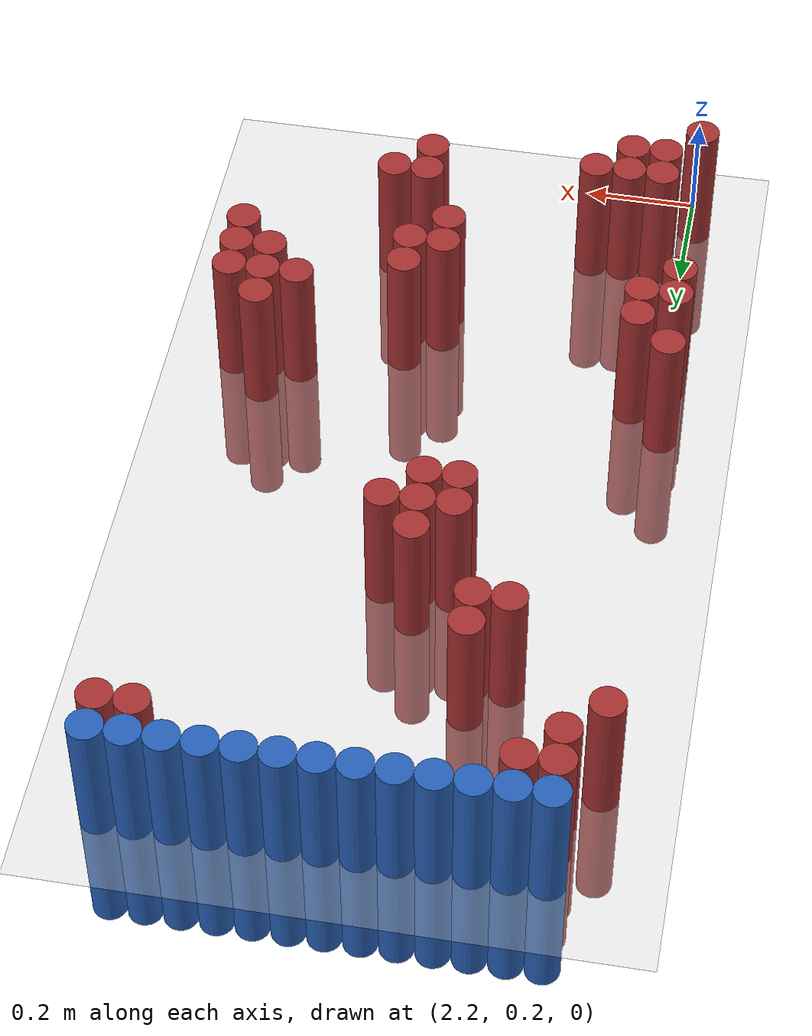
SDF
<sdf version="1.6">
 <world name="default">
  <model name="ground_plane">
   <static>1</static>
   <link name="link">
    <collision name="collision">
     <geometry><plane><normal>0 0 1</normal><size>100 100</size></plane></geometry>
     <surface><friction><ode><mu>100</mu><mu2>50</mu2></ode></friction></surface>
    </collision>
    <visual name="visual">
     <cast_shadows>0</cast_shadows>
     <geometry><plane><normal>0 0 1</normal><size>100 100</size></plane></geometry>
     <material>
      <script><uri>file://media/materials/scripts/gazebo.material</uri><name>Gazebo/Grey</name></script>
     </material>
    </visual>
   </link>
  </model>
  <model name="unit_cylinder_98">
   <static>1</static>
   <pose>2.250000 1.770000 0.000000 0.000000 0.000000 0.000000</pose>
   <link name="link">
    <inertial>
     <mass>1</mass>
     <inertia><ixx>0.145833</ixx><ixy>0</ixy><ixz>0</ixz><iyy>0.145833</iyy><iyz>0</iyz><izz>0.125</izz></inertia>
    </inertial>
    <collision name="collision">
     <geometry><cylinder><radius>0.030000</radius><length>0.5</length></cylinder></geometry>
    </collision>
    <visual name="visual">
     <geometry><cylinder><radius>0.030000</radius><length>0.5</length></cylinder></geometry>
     <material>
      <ambient>0.152000 0.379000 0.720000 1</ambient>
      <diffuse>0.152000 0.379000 0.720000 1</diffuse>
     </material>
     <material>
      <script><name>Gazebo/Grey</name><uri>file://media/materials/scripts/gazebo.material</uri></script>
     </material>
    </visual>
   </link>
  </model>
  <model name="unit_cylinder_99">
   <static>1</static>
   <pose>2.310000 1.770000 0.000000 0.000000 0.000000 0.000000</pose>
   <link name="link">
    <inertial>
     <mass>1</mass>
     <inertia><ixx>0.145833</ixx><ixy>0</ixy><ixz>0</ixz><iyy>0.145833</iyy><iyz>0</iyz><izz>0.125</izz></inertia>
    </inertial>
    <collision name="collision">
     <geometry><cylinder><radius>0.030000</radius><length>0.5</length></cylinder></geometry>
    </collision>
    <visual name="visual">
     <geometry><cylinder><radius>0.030000</radius><length>0.5</length></cylinder></geometry>
     <material>
      <ambient>0.152000 0.379000 0.720000 1</ambient>
      <diffuse>0.152000 0.379000 0.720000 1</diffuse>
     </material>
     <material>
      <script><name>Gazebo/Grey</name><uri>file://media/materials/scripts/gazebo.material</uri></script>
     </material>
    </visual>
   </link>
  </model>
  <model name="unit_cylinder_100">
   <static>1</static>
   <pose>2.370000 1.770000 0.000000 0.000000 0.000000 0.000000</pose>
   <link name="link">
    <inertial>
     <mass>1</mass>
     <inertia><ixx>0.145833</ixx><ixy>0</ixy><ixz>0</ixz><iyy>0.145833</iyy><iyz>0</iyz><izz>0.125</izz></inertia>
    </inertial>
    <collision name="collision">
     <geometry><cylinder><radius>0.030000</radius><length>0.5</length></cylinder></geometry>
    </collision>
    <visual name="visual">
     <geometry><cylinder><radius>0.030000</radius><length>0.5</length></cylinder></geometry>
     <material>
      <ambient>0.152000 0.379000 0.720000 1</ambient>
      <diffuse>0.152000 0.379000 0.720000 1</diffuse>
     </material>
     <material>
      <script><name>Gazebo/Grey</name><uri>file://media/materials/scripts/gazebo.material</uri></script>
     </material>
    </visual>
   </link>
  </model>
  <model name="unit_cylinder_101">
   <static>1</static>
   <pose>2.430000 1.770000 0.000000 0.000000 0.000000 0.000000</pose>
   <link name="link">
    <inertial>
     <mass>1</mass>
     <inertia><ixx>0.145833</ixx><ixy>0</ixy><ixz>0</ixz><iyy>0.145833</iyy><iyz>0</iyz><izz>0.125</izz></inertia>
    </inertial>
    <collision name="collision">
     <geometry><cylinder><radius>0.030000</radius><length>0.5</length></cylinder></geometry>
    </collision>
    <visual name="visual">
     <geometry><cylinder><radius>0.030000</radius><length>0.5</length></cylinder></geometry>
     <material>
      <ambient>0.152000 0.379000 0.720000 1</ambient>
      <diffuse>0.152000 0.379000 0.720000 1</diffuse>
     </material>
     <material>
      <script><name>Gazebo/Grey</name><uri>file://media/materials/scripts/gazebo.material</uri></script>
     </material>
    </visual>
   </link>
  </model>
  <model name="unit_cylinder_102">
   <static>1</static>
   <pose>2.490000 1.770000 0.000000 0.000000 0.000000 0.000000</pose>
   <link name="link">
    <inertial>
     <mass>1</mass>
     <inertia><ixx>0.145833</ixx><ixy>0</ixy><ixz>0</ixz><iyy>0.145833</iyy><iyz>0</iyz><izz>0.125</izz></inertia>
    </inertial>
    <collision name="collision">
     <geometry><cylinder><radius>0.030000</radius><length>0.5</length></cylinder></geometry>
    </collision>
    <visual name="visual">
     <geometry><cylinder><radius>0.030000</radius><length>0.5</length></cylinder></geometry>
     <material>
      <ambient>0.152000 0.379000 0.720000 1</ambient>
      <diffuse>0.152000 0.379000 0.720000 1</diffuse>
     </material>
     <material>
      <script><name>Gazebo/Grey</name><uri>file://media/materials/scripts/gazebo.material</uri></script>
     </material>
    </visual>
   </link>
  </model>
  <model name="unit_cylinder_103">
   <static>1</static>
   <pose>2.550000 1.770000 0.000000 0.000000 0.000000 0.000000</pose>
   <link name="link">
    <inertial>
     <mass>1</mass>
     <inertia><ixx>0.145833</ixx><ixy>0</ixy><ixz>0</ixz><iyy>0.145833</iyy><iyz>0</iyz><izz>0.125</izz></inertia>
    </inertial>
    <collision name="collision">
     <geometry><cylinder><radius>0.030000</radius><length>0.5</length></cylinder></geometry>
    </collision>
    <visual name="visual">
     <geometry><cylinder><radius>0.030000</radius><length>0.5</length></cylinder></geometry>
     <material>
      <ambient>0.152000 0.379000 0.720000 1</ambient>
      <diffuse>0.152000 0.379000 0.720000 1</diffuse>
     </material>
     <material>
      <script><name>Gazebo/Grey</name><uri>file://media/materials/scripts/gazebo.material</uri></script>
     </material>
    </visual>
   </link>
  </model>
  <model name="unit_cylinder_104">
   <static>1</static>
   <pose>2.610000 1.770000 0.000000 0.000000 0.000000 0.000000</pose>
   <link name="link">
    <inertial>
     <mass>1</mass>
     <inertia><ixx>0.145833</ixx><ixy>0</ixy><ixz>0</ixz><iyy>0.145833</iyy><iyz>0</iyz><izz>0.125</izz></inertia>
    </inertial>
    <collision name="collision">
     <geometry><cylinder><radius>0.030000</radius><length>0.5</length></cylinder></geometry>
    </collision>
    <visual name="visual">
     <geometry><cylinder><radius>0.030000</radius><length>0.5</length></cylinder></geometry>
     <material>
      <ambient>0.152000 0.379000 0.720000 1</ambient>
      <diffuse>0.152000 0.379000 0.720000 1</diffuse>
     </material>
     <material>
      <script><name>Gazebo/Grey</name><uri>file://media/materials/scripts/gazebo.material</uri></script>
     </material>
    </visual>
   </link>
  </model>
  <model name="unit_cylinder_105">
   <static>1</static>
   <pose>2.670000 1.770000 0.000000 0.000000 0.000000 0.000000</pose>
   <link name="link">
    <inertial>
     <mass>1</mass>
     <inertia><ixx>0.145833</ixx><ixy>0</ixy><ixz>0</ixz><iyy>0.145833</iyy><iyz>0</iyz><izz>0.125</izz></inertia>
    </inertial>
    <collision name="collision">
     <geometry><cylinder><radius>0.030000</radius><length>0.5</length></cylinder></geometry>
    </collision>
    <visual name="visual">
     <geometry><cylinder><radius>0.030000</radius><length>0.5</length></cylinder></geometry>
     <material>
      <ambient>0.152000 0.379000 0.720000 1</ambient>
      <diffuse>0.152000 0.379000 0.720000 1</diffuse>
     </material>
     <material>
      <script><name>Gazebo/Grey</name><uri>file://media/materials/scripts/gazebo.material</uri></script>
     </material>
    </visual>
   </link>
  </model>
  <model name="unit_cylinder_106">
   <static>1</static>
   <pose>2.730000 1.770000 0.000000 0.000000 0.000000 0.000000</pose>
   <link name="link">
    <inertial>
     <mass>1</mass>
     <inertia><ixx>0.145833</ixx><ixy>0</ixy><ixz>0</ixz><iyy>0.145833</iyy><iyz>0</iyz><izz>0.125</izz></inertia>
    </inertial>
    <collision name="collision">
     <geometry><cylinder><radius>0.030000</radius><length>0.5</length></cylinder></geometry>
    </collision>
    <visual name="visual">
     <geometry><cylinder><radius>0.030000</radius><length>0.5</length></cylinder></geometry>
     <material>
      <ambient>0.152000 0.379000 0.720000 1</ambient>
      <diffuse>0.152000 0.379000 0.720000 1</diffuse>
     </material>
     <material>
      <script><name>Gazebo/Grey</name><uri>file://media/materials/scripts/gazebo.material</uri></script>
     </material>
    </visual>
   </link>
  </model>
  <model name="unit_cylinder_107">
   <static>1</static>
   <pose>2.790000 1.770000 0.000000 0.000000 0.000000 0.000000</pose>
   <link name="link">
    <inertial>
     <mass>1</mass>
     <inertia><ixx>0.145833</ixx><ixy>0</ixy><ixz>0</ixz><iyy>0.145833</iyy><iyz>0</iyz><izz>0.125</izz></inertia>
    </inertial>
    <collision name="collision">
     <geometry><cylinder><radius>0.030000</radius><length>0.5</length></cylinder></geometry>
    </collision>
    <visual name="visual">
     <geometry><cylinder><radius>0.030000</radius><length>0.5</length></cylinder></geometry>
     <material>
      <ambient>0.152000 0.379000 0.720000 1</ambient>
      <diffuse>0.152000 0.379000 0.720000 1</diffuse>
     </material>
     <material>
      <script><name>Gazebo/Grey</name><uri>file://media/materials/scripts/gazebo.material</uri></script>
     </material>
    </visual>
   </link>
  </model>
  <model name="unit_cylinder_108">
   <static>1</static>
   <pose>2.850000 1.770000 0.000000 0.000000 0.000000 0.000000</pose>
   <link name="link">
    <inertial>
     <mass>1</mass>
     <inertia><ixx>0.145833</ixx><ixy>0</ixy><ixz>0</ixz><iyy>0.145833</iyy><iyz>0</iyz><izz>0.125</izz></inertia>
    </inertial>
    <collision name="collision">
     <geometry><cylinder><radius>0.030000</radius><length>0.5</length></cylinder></geometry>
    </collision>
    <visual name="visual">
     <geometry><cylinder><radius>0.030000</radius><length>0.5</length></cylinder></geometry>
     <material>
      <ambient>0.152000 0.379000 0.720000 1</ambient>
      <diffuse>0.152000 0.379000 0.720000 1</diffuse>
     </material>
     <material>
      <script><name>Gazebo/Grey</name><uri>file://media/materials/scripts/gazebo.material</uri></script>
     </material>
    </visual>
   </link>
  </model>
  <model name="unit_cylinder_109">
   <static>1</static>
   <pose>2.910000 1.770000 0.000000 0.000000 0.000000 0.000000</pose>
   <link name="link">
    <inertial>
     <mass>1</mass>
     <inertia><ixx>0.145833</ixx><ixy>0</ixy><ixz>0</ixz><iyy>0.145833</iyy><iyz>0</iyz><izz>0.125</izz></inertia>
    </inertial>
    <collision name="collision">
     <geometry><cylinder><radius>0.030000</radius><length>0.5</length></cylinder></geometry>
    </collision>
    <visual name="visual">
     <geometry><cylinder><radius>0.030000</radius><length>0.5</length></cylinder></geometry>
     <material>
      <ambient>0.152000 0.379000 0.720000 1</ambient>
      <diffuse>0.152000 0.379000 0.720000 1</diffuse>
     </material>
     <material>
      <script><name>Gazebo/Grey</name><uri>file://media/materials/scripts/gazebo.material</uri></script>
     </material>
    </visual>
   </link>
  </model>
  <model name="unit_cylinder_110">
   <static>1</static>
   <pose>2.970000 1.770000 0.000000 0.000000 0.000000 0.000000</pose>
   <link name="link">
    <inertial>
     <mass>1</mass>
     <inertia><ixx>0.145833</ixx><ixy>0</ixy><ixz>0</ixz><iyy>0.145833</iyy><iyz>0</iyz><izz>0.125</izz></inertia>
    </inertial>
    <collision name="collision">
     <geometry><cylinder><radius>0.030000</radius><length>0.5</length></cylinder></geometry>
    </collision>
    <visual name="visual">
     <geometry><cylinder><radius>0.030000</radius><length>0.5</length></cylinder></geometry>
     <material>
      <ambient>0.152000 0.379000 0.720000 1</ambient>
      <diffuse>0.152000 0.379000 0.720000 1</diffuse>
     </material>
     <material>
      <script><name>Gazebo/Grey</name><uri>file://media/materials/scripts/gazebo.material</uri></script>
     </material>
    </visual>
   </link>
  </model>
  <model name="unit_cylinder_127">
   <static>1</static>
   <pose>2.250000 1.710000 0.000000 0.000000 0.000000 0.000000</pose>
   <link name="link">
    <inertial>
     <mass>1</mass>
     <inertia><ixx>0.145833</ixx><ixy>0</ixy><ixz>0</ixz><iyy>0.145833</iyy><iyz>0</iyz><izz>0.125</izz></inertia>
    </inertial>
    <collision name="collision">
     <geometry><cylinder><radius>0.030000</radius><length>0.5</length></cylinder></geometry>
    </collision>
    <visual name="visual">
     <geometry><cylinder><radius>0.030000</radius><length>0.5</length></cylinder></geometry>
     <material>
      <ambient>0.648000 0.192000 0.192000 1</ambient>
      <diffuse>0.648000 0.192000 0.192000 1</diffuse>
     </material>
     <material>
      <script><name>Gazebo/Grey</name><uri>file://media/materials/scripts/gazebo.material</uri></script>
     </material>
    </visual>
   </link>
  </model>
  <model name="unit_cylinder_128">
   <static>1</static>
   <pose>2.310000 1.710000 0.000000 0.000000 0.000000 0.000000</pose>
   <link name="link">
    <inertial>
     <mass>1</mass>
     <inertia><ixx>0.145833</ixx><ixy>0</ixy><ixz>0</ixz><iyy>0.145833</iyy><iyz>0</iyz><izz>0.125</izz></inertia>
    </inertial>
    <collision name="collision">
     <geometry><cylinder><radius>0.030000</radius><length>0.5</length></cylinder></geometry>
    </collision>
    <visual name="visual">
     <geometry><cylinder><radius>0.030000</radius><length>0.5</length></cylinder></geometry>
     <material>
      <ambient>0.648000 0.192000 0.192000 1</ambient>
      <diffuse>0.648000 0.192000 0.192000 1</diffuse>
     </material>
     <material>
      <script><name>Gazebo/Grey</name><uri>file://media/materials/scripts/gazebo.material</uri></script>
     </material>
    </visual>
   </link>
  </model>
  <model name="unit_cylinder_129">
   <static>1</static>
   <pose>2.910000 1.710000 0.000000 0.000000 0.000000 0.000000</pose>
   <link name="link">
    <inertial>
     <mass>1</mass>
     <inertia><ixx>0.145833</ixx><ixy>0</ixy><ixz>0</ixz><iyy>0.145833</iyy><iyz>0</iyz><izz>0.125</izz></inertia>
    </inertial>
    <collision name="collision">
     <geometry><cylinder><radius>0.030000</radius><length>0.5</length></cylinder></geometry>
    </collision>
    <visual name="visual">
     <geometry><cylinder><radius>0.030000</radius><length>0.5</length></cylinder></geometry>
     <material>
      <ambient>0.648000 0.192000 0.192000 1</ambient>
      <diffuse>0.648000 0.192000 0.192000 1</diffuse>
     </material>
     <material>
      <script><name>Gazebo/Grey</name><uri>file://media/materials/scripts/gazebo.material</uri></script>
     </material>
    </visual>
   </link>
  </model>
  <model name="unit_cylinder_130">
   <static>1</static>
   <pose>2.970000 1.710000 0.000000 0.000000 0.000000 0.000000</pose>
   <link name="link">
    <inertial>
     <mass>1</mass>
     <inertia><ixx>0.145833</ixx><ixy>0</ixy><ixz>0</ixz><iyy>0.145833</iyy><iyz>0</iyz><izz>0.125</izz></inertia>
    </inertial>
    <collision name="collision">
     <geometry><cylinder><radius>0.030000</radius><length>0.5</length></cylinder></geometry>
    </collision>
    <visual name="visual">
     <geometry><cylinder><radius>0.030000</radius><length>0.5</length></cylinder></geometry>
     <material>
      <ambient>0.648000 0.192000 0.192000 1</ambient>
      <diffuse>0.648000 0.192000 0.192000 1</diffuse>
     </material>
     <material>
      <script><name>Gazebo/Grey</name><uri>file://media/materials/scripts/gazebo.material</uri></script>
     </material>
    </visual>
   </link>
  </model>
  <model name="unit_cylinder_142">
   <static>1</static>
   <pose>2.250000 1.650000 0.000000 0.000000 0.000000 0.000000</pose>
   <link name="link">
    <inertial>
     <mass>1</mass>
     <inertia><ixx>0.145833</ixx><ixy>0</ixy><ixz>0</ixz><iyy>0.145833</iyy><iyz>0</iyz><izz>0.125</izz></inertia>
    </inertial>
    <collision name="collision">
     <geometry><cylinder><radius>0.030000</radius><length>0.5</length></cylinder></geometry>
    </collision>
    <visual name="visual">
     <geometry><cylinder><radius>0.030000</radius><length>0.5</length></cylinder></geometry>
     <material>
      <ambient>0.648000 0.192000 0.192000 1</ambient>
      <diffuse>0.648000 0.192000 0.192000 1</diffuse>
     </material>
     <material>
      <script><name>Gazebo/Grey</name><uri>file://media/materials/scripts/gazebo.material</uri></script>
     </material>
    </visual>
   </link>
  </model>
  <model name="unit_cylinder_143">
   <static>1</static>
   <pose>2.190000 1.590000 0.000000 0.000000 0.000000 0.000000</pose>
   <link name="link">
    <inertial>
     <mass>1</mass>
     <inertia><ixx>0.145833</ixx><ixy>0</ixy><ixz>0</ixz><iyy>0.145833</iyy><iyz>0</iyz><izz>0.125</izz></inertia>
    </inertial>
    <collision name="collision">
     <geometry><cylinder><radius>0.030000</radius><length>0.5</length></cylinder></geometry>
    </collision>
    <visual name="visual">
     <geometry><cylinder><radius>0.030000</radius><length>0.5</length></cylinder></geometry>
     <material>
      <ambient>0.648000 0.192000 0.192000 1</ambient>
      <diffuse>0.648000 0.192000 0.192000 1</diffuse>
     </material>
     <material>
      <script><name>Gazebo/Grey</name><uri>file://media/materials/scripts/gazebo.material</uri></script>
     </material>
    </visual>
   </link>
  </model>
  <model name="unit_cylinder_144">
   <static>1</static>
   <pose>2.430000 1.470000 0.000000 0.000000 0.000000 0.000000</pose>
   <link name="link">
    <inertial>
     <mass>1</mass>
     <inertia><ixx>0.145833</ixx><ixy>0</ixy><ixz>0</ixz><iyy>0.145833</iyy><iyz>0</iyz><izz>0.125</izz></inertia>
    </inertial>
    <collision name="collision">
     <geometry><cylinder><radius>0.030000</radius><length>0.5</length></cylinder></geometry>
    </collision>
    <visual name="visual">
     <geometry><cylinder><radius>0.030000</radius><length>0.5</length></cylinder></geometry>
     <material>
      <ambient>0.648000 0.192000 0.192000 1</ambient>
      <diffuse>0.648000 0.192000 0.192000 1</diffuse>
     </material>
     <material>
      <script><name>Gazebo/Grey</name><uri>file://media/materials/scripts/gazebo.material</uri></script>
     </material>
    </visual>
   </link>
  </model>
  <model name="unit_cylinder_146">
   <static>1</static>
   <pose>2.370000 1.410000 0.000000 0.000000 0.000000 0.000000</pose>
   <link name="link">
    <inertial>
     <mass>1</mass>
     <inertia><ixx>0.145833</ixx><ixy>0</ixy><ixz>0</ixz><iyy>0.145833</iyy><iyz>0</iyz><izz>0.125</izz></inertia>
    </inertial>
    <collision name="collision">
     <geometry><cylinder><radius>0.030000</radius><length>0.5</length></cylinder></geometry>
    </collision>
    <visual name="visual">
     <geometry><cylinder><radius>0.030000</radius><length>0.5</length></cylinder></geometry>
     <material>
      <ambient>0.648000 0.192000 0.192000 1</ambient>
      <diffuse>0.648000 0.192000 0.192000 1</diffuse>
     </material>
     <material>
      <script><name>Gazebo/Grey</name><uri>file://media/materials/scripts/gazebo.material</uri></script>
     </material>
    </visual>
   </link>
  </model>
  <model name="unit_cylinder_147">
   <static>1</static>
   <pose>2.430000 1.410000 0.000000 0.000000 0.000000 0.000000</pose>
   <link name="link">
    <inertial>
     <mass>1</mass>
     <inertia><ixx>0.145833</ixx><ixy>0</ixy><ixz>0</ixz><iyy>0.145833</iyy><iyz>0</iyz><izz>0.125</izz></inertia>
    </inertial>
    <collision name="collision">
     <geometry><cylinder><radius>0.030000</radius><length>0.5</length></cylinder></geometry>
    </collision>
    <visual name="visual">
     <geometry><cylinder><radius>0.030000</radius><length>0.5</length></cylinder></geometry>
     <material>
      <ambient>0.648000 0.192000 0.192000 1</ambient>
      <diffuse>0.648000 0.192000 0.192000 1</diffuse>
     </material>
     <material>
      <script><name>Gazebo/Grey</name><uri>file://media/materials/scripts/gazebo.material</uri></script>
     </material>
    </visual>
   </link>
  </model>
  <model name="unit_cylinder_150">
   <static>1</static>
   <pose>2.550000 1.290000 0.000000 0.000000 0.000000 0.000000</pose>
   <link name="link">
    <inertial>
     <mass>1</mass>
     <inertia><ixx>0.145833</ixx><ixy>0</ixy><ixz>0</ixz><iyy>0.145833</iyy><iyz>0</iyz><izz>0.125</izz></inertia>
    </inertial>
    <collision name="collision">
     <geometry><cylinder><radius>0.030000</radius><length>0.5</length></cylinder></geometry>
    </collision>
    <visual name="visual">
     <geometry><cylinder><radius>0.030000</radius><length>0.5</length></cylinder></geometry>
     <material>
      <ambient>0.648000 0.192000 0.192000 1</ambient>
      <diffuse>0.648000 0.192000 0.192000 1</diffuse>
     </material>
     <material>
      <script><name>Gazebo/Grey</name><uri>file://media/materials/scripts/gazebo.material</uri></script>
     </material>
    </visual>
   </link>
  </model>
  <model name="unit_cylinder_152">
   <static>1</static>
   <pose>2.490000 1.230000 0.000000 0.000000 0.000000 0.000000</pose>
   <link name="link">
    <inertial>
     <mass>1</mass>
     <inertia><ixx>0.145833</ixx><ixy>0</ixy><ixz>0</ixz><iyy>0.145833</iyy><iyz>0</iyz><izz>0.125</izz></inertia>
    </inertial>
    <collision name="collision">
     <geometry><cylinder><radius>0.030000</radius><length>0.5</length></cylinder></geometry>
    </collision>
    <visual name="visual">
     <geometry><cylinder><radius>0.030000</radius><length>0.5</length></cylinder></geometry>
     <material>
      <ambient>0.648000 0.192000 0.192000 1</ambient>
      <diffuse>0.648000 0.192000 0.192000 1</diffuse>
     </material>
     <material>
      <script><name>Gazebo/Grey</name><uri>file://media/materials/scripts/gazebo.material</uri></script>
     </material>
    </visual>
   </link>
  </model>
  <model name="unit_cylinder_153">
   <static>1</static>
   <pose>2.550000 1.230000 0.000000 0.000000 0.000000 0.000000</pose>
   <link name="link">
    <inertial>
     <mass>1</mass>
     <inertia><ixx>0.145833</ixx><ixy>0</ixy><ixz>0</ixz><iyy>0.145833</iyy><iyz>0</iyz><izz>0.125</izz></inertia>
    </inertial>
    <collision name="collision">
     <geometry><cylinder><radius>0.030000</radius><length>0.5</length></cylinder></geometry>
    </collision>
    <visual name="visual">
     <geometry><cylinder><radius>0.030000</radius><length>0.5</length></cylinder></geometry>
     <material>
      <ambient>0.648000 0.192000 0.192000 1</ambient>
      <diffuse>0.648000 0.192000 0.192000 1</diffuse>
     </material>
     <material>
      <script><name>Gazebo/Grey</name><uri>file://media/materials/scripts/gazebo.material</uri></script>
     </material>
    </visual>
   </link>
  </model>
  <model name="unit_cylinder_154">
   <static>1</static>
   <pose>2.610000 1.230000 0.000000 0.000000 0.000000 0.000000</pose>
   <link name="link">
    <inertial>
     <mass>1</mass>
     <inertia><ixx>0.145833</ixx><ixy>0</ixy><ixz>0</ixz><iyy>0.145833</iyy><iyz>0</iyz><izz>0.125</izz></inertia>
    </inertial>
    <collision name="collision">
     <geometry><cylinder><radius>0.030000</radius><length>0.5</length></cylinder></geometry>
    </collision>
    <visual name="visual">
     <geometry><cylinder><radius>0.030000</radius><length>0.5</length></cylinder></geometry>
     <material>
      <ambient>0.648000 0.192000 0.192000 1</ambient>
      <diffuse>0.648000 0.192000 0.192000 1</diffuse>
     </material>
     <material>
      <script><name>Gazebo/Grey</name><uri>file://media/materials/scripts/gazebo.material</uri></script>
     </material>
    </visual>
   </link>
  </model>
  <model name="unit_cylinder_158">
   <static>1</static>
   <pose>2.490000 1.170000 0.000000 0.000000 0.000000 0.000000</pose>
   <link name="link">
    <inertial>
     <mass>1</mass>
     <inertia><ixx>0.145833</ixx><ixy>0</ixy><ixz>0</ixz><iyy>0.145833</iyy><iyz>0</iyz><izz>0.125</izz></inertia>
    </inertial>
    <collision name="collision">
     <geometry><cylinder><radius>0.030000</radius><length>0.5</length></cylinder></geometry>
    </collision>
    <visual name="visual">
     <geometry><cylinder><radius>0.030000</radius><length>0.5</length></cylinder></geometry>
     <material>
      <ambient>0.648000 0.192000 0.192000 1</ambient>
      <diffuse>0.648000 0.192000 0.192000 1</diffuse>
     </material>
     <material>
      <script><name>Gazebo/Grey</name><uri>file://media/materials/scripts/gazebo.material</uri></script>
     </material>
    </visual>
   </link>
  </model>
  <model name="unit_cylinder_159">
   <static>1</static>
   <pose>2.550000 1.170000 0.000000 0.000000 0.000000 0.000000</pose>
   <link name="link">
    <inertial>
     <mass>1</mass>
     <inertia><ixx>0.145833</ixx><ixy>0</ixy><ixz>0</ixz><iyy>0.145833</iyy><iyz>0</iyz><izz>0.125</izz></inertia>
    </inertial>
    <collision name="collision">
     <geometry><cylinder><radius>0.030000</radius><length>0.5</length></cylinder></geometry>
    </collision>
    <visual name="visual">
     <geometry><cylinder><radius>0.030000</radius><length>0.5</length></cylinder></geometry>
     <material>
      <ambient>0.648000 0.192000 0.192000 1</ambient>
      <diffuse>0.648000 0.192000 0.192000 1</diffuse>
     </material>
     <material>
      <script><name>Gazebo/Grey</name><uri>file://media/materials/scripts/gazebo.material</uri></script>
     </material>
    </visual>
   </link>
  </model>
  <model name="unit_cylinder_166">
   <static>1</static>
   <pose>2.190000 0.810000 0.000000 0.000000 0.000000 0.000000</pose>
   <link name="link">
    <inertial>
     <mass>1</mass>
     <inertia><ixx>0.145833</ixx><ixy>0</ixy><ixz>0</ixz><iyy>0.145833</iyy><iyz>0</iyz><izz>0.125</izz></inertia>
    </inertial>
    <collision name="collision">
     <geometry><cylinder><radius>0.030000</radius><length>0.5</length></cylinder></geometry>
    </collision>
    <visual name="visual">
     <geometry><cylinder><radius>0.030000</radius><length>0.5</length></cylinder></geometry>
     <material>
      <ambient>0.648000 0.192000 0.192000 1</ambient>
      <diffuse>0.648000 0.192000 0.192000 1</diffuse>
     </material>
     <material>
      <script><name>Gazebo/Grey</name><uri>file://media/materials/scripts/gazebo.material</uri></script>
     </material>
    </visual>
   </link>
  </model>
  <model name="unit_cylinder_167">
   <static>1</static>
   <pose>2.910000 0.810000 0.000000 0.000000 0.000000 0.000000</pose>
   <link name="link">
    <inertial>
     <mass>1</mass>
     <inertia><ixx>0.145833</ixx><ixy>0</ixy><ixz>0</ixz><iyy>0.145833</iyy><iyz>0</iyz><izz>0.125</izz></inertia>
    </inertial>
    <collision name="collision">
     <geometry><cylinder><radius>0.030000</radius><length>0.5</length></cylinder></geometry>
    </collision>
    <visual name="visual">
     <geometry><cylinder><radius>0.030000</radius><length>0.5</length></cylinder></geometry>
     <material>
      <ambient>0.648000 0.192000 0.192000 1</ambient>
      <diffuse>0.648000 0.192000 0.192000 1</diffuse>
     </material>
     <material>
      <script><name>Gazebo/Grey</name><uri>file://media/materials/scripts/gazebo.material</uri></script>
     </material>
    </visual>
   </link>
  </model>
  <model name="unit_cylinder_168">
   <static>1</static>
   <pose>2.250000 0.750000 0.000000 0.000000 0.000000 0.000000</pose>
   <link name="link">
    <inertial>
     <mass>1</mass>
     <inertia><ixx>0.145833</ixx><ixy>0</ixy><ixz>0</ixz><iyy>0.145833</iyy><iyz>0</iyz><izz>0.125</izz></inertia>
    </inertial>
    <collision name="collision">
     <geometry><cylinder><radius>0.030000</radius><length>0.5</length></cylinder></geometry>
    </collision>
    <visual name="visual">
     <geometry><cylinder><radius>0.030000</radius><length>0.5</length></cylinder></geometry>
     <material>
      <ambient>0.648000 0.192000 0.192000 1</ambient>
      <diffuse>0.648000 0.192000 0.192000 1</diffuse>
     </material>
     <material>
      <script><name>Gazebo/Grey</name><uri>file://media/materials/scripts/gazebo.material</uri></script>
     </material>
    </visual>
   </link>
  </model>
  <model name="unit_cylinder_169">
   <static>1</static>
   <pose>2.850000 0.750000 0.000000 0.000000 0.000000 0.000000</pose>
   <link name="link">
    <inertial>
     <mass>1</mass>
     <inertia><ixx>0.145833</ixx><ixy>0</ixy><ixz>0</ixz><iyy>0.145833</iyy><iyz>0</iyz><izz>0.125</izz></inertia>
    </inertial>
    <collision name="collision">
     <geometry><cylinder><radius>0.030000</radius><length>0.5</length></cylinder></geometry>
    </collision>
    <visual name="visual">
     <geometry><cylinder><radius>0.030000</radius><length>0.5</length></cylinder></geometry>
     <material>
      <ambient>0.648000 0.192000 0.192000 1</ambient>
      <diffuse>0.648000 0.192000 0.192000 1</diffuse>
     </material>
     <material>
      <script><name>Gazebo/Grey</name><uri>file://media/materials/scripts/gazebo.material</uri></script>
     </material>
    </visual>
   </link>
  </model>
  <model name="unit_cylinder_170">
   <static>1</static>
   <pose>2.910000 0.750000 0.000000 0.000000 0.000000 0.000000</pose>
   <link name="link">
    <inertial>
     <mass>1</mass>
     <inertia><ixx>0.145833</ixx><ixy>0</ixy><ixz>0</ixz><iyy>0.145833</iyy><iyz>0</iyz><izz>0.125</izz></inertia>
    </inertial>
    <collision name="collision">
     <geometry><cylinder><radius>0.030000</radius><length>0.5</length></cylinder></geometry>
    </collision>
    <visual name="visual">
     <geometry><cylinder><radius>0.030000</radius><length>0.5</length></cylinder></geometry>
     <material>
      <ambient>0.648000 0.192000 0.192000 1</ambient>
      <diffuse>0.648000 0.192000 0.192000 1</diffuse>
     </material>
     <material>
      <script><name>Gazebo/Grey</name><uri>file://media/materials/scripts/gazebo.material</uri></script>
     </material>
    </visual>
   </link>
  </model>
  <model name="unit_cylinder_171">
   <static>1</static>
   <pose>2.970000 0.750000 0.000000 0.000000 0.000000 0.000000</pose>
   <link name="link">
    <inertial>
     <mass>1</mass>
     <inertia><ixx>0.145833</ixx><ixy>0</ixy><ixz>0</ixz><iyy>0.145833</iyy><iyz>0</iyz><izz>0.125</izz></inertia>
    </inertial>
    <collision name="collision">
     <geometry><cylinder><radius>0.030000</radius><length>0.5</length></cylinder></geometry>
    </collision>
    <visual name="visual">
     <geometry><cylinder><radius>0.030000</radius><length>0.5</length></cylinder></geometry>
     <material>
      <ambient>0.648000 0.192000 0.192000 1</ambient>
      <diffuse>0.648000 0.192000 0.192000 1</diffuse>
     </material>
     <material>
      <script><name>Gazebo/Grey</name><uri>file://media/materials/scripts/gazebo.material</uri></script>
     </material>
    </visual>
   </link>
  </model>
  <model name="unit_cylinder_172">
   <static>1</static>
   <pose>2.190000 0.690000 0.000000 0.000000 0.000000 0.000000</pose>
   <link name="link">
    <inertial>
     <mass>1</mass>
     <inertia><ixx>0.145833</ixx><ixy>0</ixy><ixz>0</ixz><iyy>0.145833</iyy><iyz>0</iyz><izz>0.125</izz></inertia>
    </inertial>
    <collision name="collision">
     <geometry><cylinder><radius>0.030000</radius><length>0.5</length></cylinder></geometry>
    </collision>
    <visual name="visual">
     <geometry><cylinder><radius>0.030000</radius><length>0.5</length></cylinder></geometry>
     <material>
      <ambient>0.648000 0.192000 0.192000 1</ambient>
      <diffuse>0.648000 0.192000 0.192000 1</diffuse>
     </material>
     <material>
      <script><name>Gazebo/Grey</name><uri>file://media/materials/scripts/gazebo.material</uri></script>
     </material>
    </visual>
   </link>
  </model>
  <model name="unit_cylinder_173">
   <static>1</static>
   <pose>2.250000 0.690000 0.000000 0.000000 0.000000 0.000000</pose>
   <link name="link">
    <inertial>
     <mass>1</mass>
     <inertia><ixx>0.145833</ixx><ixy>0</ixy><ixz>0</ixz><iyy>0.145833</iyy><iyz>0</iyz><izz>0.125</izz></inertia>
    </inertial>
    <collision name="collision">
     <geometry><cylinder><radius>0.030000</radius><length>0.5</length></cylinder></geometry>
    </collision>
    <visual name="visual">
     <geometry><cylinder><radius>0.030000</radius><length>0.5</length></cylinder></geometry>
     <material>
      <ambient>0.648000 0.192000 0.192000 1</ambient>
      <diffuse>0.648000 0.192000 0.192000 1</diffuse>
     </material>
     <material>
      <script><name>Gazebo/Grey</name><uri>file://media/materials/scripts/gazebo.material</uri></script>
     </material>
    </visual>
   </link>
  </model>
  <model name="unit_cylinder_174">
   <static>1</static>
   <pose>2.670000 0.690000 0.000000 0.000000 0.000000 0.000000</pose>
   <link name="link">
    <inertial>
     <mass>1</mass>
     <inertia><ixx>0.145833</ixx><ixy>0</ixy><ixz>0</ixz><iyy>0.145833</iyy><iyz>0</iyz><izz>0.125</izz></inertia>
    </inertial>
    <collision name="collision">
     <geometry><cylinder><radius>0.030000</radius><length>0.5</length></cylinder></geometry>
    </collision>
    <visual name="visual">
     <geometry><cylinder><radius>0.030000</radius><length>0.5</length></cylinder></geometry>
     <material>
      <ambient>0.648000 0.192000 0.192000 1</ambient>
      <diffuse>0.648000 0.192000 0.192000 1</diffuse>
     </material>
     <material>
      <script><name>Gazebo/Grey</name><uri>file://media/materials/scripts/gazebo.material</uri></script>
     </material>
    </visual>
   </link>
  </model>
  <model name="unit_cylinder_175">
   <static>1</static>
   <pose>2.910000 0.690000 0.000000 0.000000 0.000000 0.000000</pose>
   <link name="link">
    <inertial>
     <mass>1</mass>
     <inertia><ixx>0.145833</ixx><ixy>0</ixy><ixz>0</ixz><iyy>0.145833</iyy><iyz>0</iyz><izz>0.125</izz></inertia>
    </inertial>
    <collision name="collision">
     <geometry><cylinder><radius>0.030000</radius><length>0.5</length></cylinder></geometry>
    </collision>
    <visual name="visual">
     <geometry><cylinder><radius>0.030000</radius><length>0.5</length></cylinder></geometry>
     <material>
      <ambient>0.648000 0.192000 0.192000 1</ambient>
      <diffuse>0.648000 0.192000 0.192000 1</diffuse>
     </material>
     <material>
      <script><name>Gazebo/Grey</name><uri>file://media/materials/scripts/gazebo.material</uri></script>
     </material>
    </visual>
   </link>
  </model>
  <model name="unit_cylinder_176">
   <static>1</static>
   <pose>2.970000 0.690000 0.000000 0.000000 0.000000 0.000000</pose>
   <link name="link">
    <inertial>
     <mass>1</mass>
     <inertia><ixx>0.145833</ixx><ixy>0</ixy><ixz>0</ixz><iyy>0.145833</iyy><iyz>0</iyz><izz>0.125</izz></inertia>
    </inertial>
    <collision name="collision">
     <geometry><cylinder><radius>0.030000</radius><length>0.5</length></cylinder></geometry>
    </collision>
    <visual name="visual">
     <geometry><cylinder><radius>0.030000</radius><length>0.5</length></cylinder></geometry>
     <material>
      <ambient>0.648000 0.192000 0.192000 1</ambient>
      <diffuse>0.648000 0.192000 0.192000 1</diffuse>
     </material>
     <material>
      <script><name>Gazebo/Grey</name><uri>file://media/materials/scripts/gazebo.material</uri></script>
     </material>
    </visual>
   </link>
  </model>
  <model name="unit_cylinder_179">
   <static>1</static>
   <pose>2.190000 0.630000 0.000000 0.000000 0.000000 0.000000</pose>
   <link name="link">
    <inertial>
     <mass>1</mass>
     <inertia><ixx>0.145833</ixx><ixy>0</ixy><ixz>0</ixz><iyy>0.145833</iyy><iyz>0</iyz><izz>0.125</izz></inertia>
    </inertial>
    <collision name="collision">
     <geometry><cylinder><radius>0.030000</radius><length>0.5</length></cylinder></geometry>
    </collision>
    <visual name="visual">
     <geometry><cylinder><radius>0.030000</radius><length>0.5</length></cylinder></geometry>
     <material>
      <ambient>0.648000 0.192000 0.192000 1</ambient>
      <diffuse>0.648000 0.192000 0.192000 1</diffuse>
     </material>
     <material>
      <script><name>Gazebo/Grey</name><uri>file://media/materials/scripts/gazebo.material</uri></script>
     </material>
    </visual>
   </link>
  </model>
  <model name="unit_cylinder_180">
   <static>1</static>
   <pose>2.610000 0.630000 0.000000 0.000000 0.000000 0.000000</pose>
   <link name="link">
    <inertial>
     <mass>1</mass>
     <inertia><ixx>0.145833</ixx><ixy>0</ixy><ixz>0</ixz><iyy>0.145833</iyy><iyz>0</iyz><izz>0.125</izz></inertia>
    </inertial>
    <collision name="collision">
     <geometry><cylinder><radius>0.030000</radius><length>0.5</length></cylinder></geometry>
    </collision>
    <visual name="visual">
     <geometry><cylinder><radius>0.030000</radius><length>0.5</length></cylinder></geometry>
     <material>
      <ambient>0.648000 0.192000 0.192000 1</ambient>
      <diffuse>0.648000 0.192000 0.192000 1</diffuse>
     </material>
     <material>
      <script><name>Gazebo/Grey</name><uri>file://media/materials/scripts/gazebo.material</uri></script>
     </material>
    </visual>
   </link>
  </model>
  <model name="unit_cylinder_181">
   <static>1</static>
   <pose>2.670000 0.630000 0.000000 0.000000 0.000000 0.000000</pose>
   <link name="link">
    <inertial>
     <mass>1</mass>
     <inertia><ixx>0.145833</ixx><ixy>0</ixy><ixz>0</ixz><iyy>0.145833</iyy><iyz>0</iyz><izz>0.125</izz></inertia>
    </inertial>
    <collision name="collision">
     <geometry><cylinder><radius>0.030000</radius><length>0.5</length></cylinder></geometry>
    </collision>
    <visual name="visual">
     <geometry><cylinder><radius>0.030000</radius><length>0.5</length></cylinder></geometry>
     <material>
      <ambient>0.648000 0.192000 0.192000 1</ambient>
      <diffuse>0.648000 0.192000 0.192000 1</diffuse>
     </material>
     <material>
      <script><name>Gazebo/Grey</name><uri>file://media/materials/scripts/gazebo.material</uri></script>
     </material>
    </visual>
   </link>
  </model>
  <model name="unit_cylinder_182">
   <static>1</static>
   <pose>2.970000 0.630000 0.000000 0.000000 0.000000 0.000000</pose>
   <link name="link">
    <inertial>
     <mass>1</mass>
     <inertia><ixx>0.145833</ixx><ixy>0</ixy><ixz>0</ixz><iyy>0.145833</iyy><iyz>0</iyz><izz>0.125</izz></inertia>
    </inertial>
    <collision name="collision">
     <geometry><cylinder><radius>0.030000</radius><length>0.5</length></cylinder></geometry>
    </collision>
    <visual name="visual">
     <geometry><cylinder><radius>0.030000</radius><length>0.5</length></cylinder></geometry>
     <material>
      <ambient>0.648000 0.192000 0.192000 1</ambient>
      <diffuse>0.648000 0.192000 0.192000 1</diffuse>
     </material>
     <material>
      <script><name>Gazebo/Grey</name><uri>file://media/materials/scripts/gazebo.material</uri></script>
     </material>
    </visual>
   </link>
  </model>
  <model name="unit_cylinder_185">
   <static>1</static>
   <pose>2.610000 0.570000 0.000000 0.000000 0.000000 0.000000</pose>
   <link name="link">
    <inertial>
     <mass>1</mass>
     <inertia><ixx>0.145833</ixx><ixy>0</ixy><ixz>0</ixz><iyy>0.145833</iyy><iyz>0</iyz><izz>0.125</izz></inertia>
    </inertial>
    <collision name="collision">
     <geometry><cylinder><radius>0.030000</radius><length>0.5</length></cylinder></geometry>
    </collision>
    <visual name="visual">
     <geometry><cylinder><radius>0.030000</radius><length>0.5</length></cylinder></geometry>
     <material>
      <ambient>0.648000 0.192000 0.192000 1</ambient>
      <diffuse>0.648000 0.192000 0.192000 1</diffuse>
     </material>
     <material>
      <script><name>Gazebo/Grey</name><uri>file://media/materials/scripts/gazebo.material</uri></script>
     </material>
    </visual>
   </link>
  </model>
  <model name="unit_cylinder_189">
   <static>1</static>
   <pose>2.670000 0.450000 0.000000 0.000000 0.000000 0.000000</pose>
   <link name="link">
    <inertial>
     <mass>1</mass>
     <inertia><ixx>0.145833</ixx><ixy>0</ixy><ixz>0</ixz><iyy>0.145833</iyy><iyz>0</iyz><izz>0.125</izz></inertia>
    </inertial>
    <collision name="collision">
     <geometry><cylinder><radius>0.030000</radius><length>0.5</length></cylinder></geometry>
    </collision>
    <visual name="visual">
     <geometry><cylinder><radius>0.030000</radius><length>0.5</length></cylinder></geometry>
     <material>
      <ambient>0.648000 0.192000 0.192000 1</ambient>
      <diffuse>0.648000 0.192000 0.192000 1</diffuse>
     </material>
     <material>
      <script><name>Gazebo/Grey</name><uri>file://media/materials/scripts/gazebo.material</uri></script>
     </material>
    </visual>
   </link>
  </model>
  <model name="unit_cylinder_190">
   <static>1</static>
   <pose>2.730000 0.450000 0.000000 0.000000 0.000000 0.000000</pose>
   <link name="link">
    <inertial>
     <mass>1</mass>
     <inertia><ixx>0.145833</ixx><ixy>0</ixy><ixz>0</ixz><iyy>0.145833</iyy><iyz>0</iyz><izz>0.125</izz></inertia>
    </inertial>
    <collision name="collision">
     <geometry><cylinder><radius>0.030000</radius><length>0.5</length></cylinder></geometry>
    </collision>
    <visual name="visual">
     <geometry><cylinder><radius>0.030000</radius><length>0.5</length></cylinder></geometry>
     <material>
      <ambient>0.648000 0.192000 0.192000 1</ambient>
      <diffuse>0.648000 0.192000 0.192000 1</diffuse>
     </material>
     <material>
      <script><name>Gazebo/Grey</name><uri>file://media/materials/scripts/gazebo.material</uri></script>
     </material>
    </visual>
   </link>
  </model>
  <model name="unit_cylinder_195">
   <static>1</static>
   <pose>2.250000 0.390000 0.000000 0.000000 0.000000 0.000000</pose>
   <link name="link">
    <inertial>
     <mass>1</mass>
     <inertia><ixx>0.145833</ixx><ixy>0</ixy><ixz>0</ixz><iyy>0.145833</iyy><iyz>0</iyz><izz>0.125</izz></inertia>
    </inertial>
    <collision name="collision">
     <geometry><cylinder><radius>0.030000</radius><length>0.5</length></cylinder></geometry>
    </collision>
    <visual name="visual">
     <geometry><cylinder><radius>0.030000</radius><length>0.5</length></cylinder></geometry>
     <material>
      <ambient>0.648000 0.192000 0.192000 1</ambient>
      <diffuse>0.648000 0.192000 0.192000 1</diffuse>
     </material>
     <material>
      <script><name>Gazebo/Grey</name><uri>file://media/materials/scripts/gazebo.material</uri></script>
     </material>
    </visual>
   </link>
  </model>
  <model name="unit_cylinder_196">
   <static>1</static>
   <pose>2.310000 0.390000 0.000000 0.000000 0.000000 0.000000</pose>
   <link name="link">
    <inertial>
     <mass>1</mass>
     <inertia><ixx>0.145833</ixx><ixy>0</ixy><ixz>0</ixz><iyy>0.145833</iyy><iyz>0</iyz><izz>0.125</izz></inertia>
    </inertial>
    <collision name="collision">
     <geometry><cylinder><radius>0.030000</radius><length>0.5</length></cylinder></geometry>
    </collision>
    <visual name="visual">
     <geometry><cylinder><radius>0.030000</radius><length>0.5</length></cylinder></geometry>
     <material>
      <ambient>0.648000 0.192000 0.192000 1</ambient>
      <diffuse>0.648000 0.192000 0.192000 1</diffuse>
     </material>
     <material>
      <script><name>Gazebo/Grey</name><uri>file://media/materials/scripts/gazebo.material</uri></script>
     </material>
    </visual>
   </link>
  </model>
  <model name="unit_cylinder_197">
   <static>1</static>
   <pose>2.370000 0.390000 0.000000 0.000000 0.000000 0.000000</pose>
   <link name="link">
    <inertial>
     <mass>1</mass>
     <inertia><ixx>0.145833</ixx><ixy>0</ixy><ixz>0</ixz><iyy>0.145833</iyy><iyz>0</iyz><izz>0.125</izz></inertia>
    </inertial>
    <collision name="collision">
     <geometry><cylinder><radius>0.030000</radius><length>0.5</length></cylinder></geometry>
    </collision>
    <visual name="visual">
     <geometry><cylinder><radius>0.030000</radius><length>0.5</length></cylinder></geometry>
     <material>
      <ambient>0.648000 0.192000 0.192000 1</ambient>
      <diffuse>0.648000 0.192000 0.192000 1</diffuse>
     </material>
     <material>
      <script><name>Gazebo/Grey</name><uri>file://media/materials/scripts/gazebo.material</uri></script>
     </material>
    </visual>
   </link>
  </model>
  <model name="unit_cylinder_198">
   <static>1</static>
   <pose>2.670000 0.390000 0.000000 0.000000 0.000000 0.000000</pose>
   <link name="link">
    <inertial>
     <mass>1</mass>
     <inertia><ixx>0.145833</ixx><ixy>0</ixy><ixz>0</ixz><iyy>0.145833</iyy><iyz>0</iyz><izz>0.125</izz></inertia>
    </inertial>
    <collision name="collision">
     <geometry><cylinder><radius>0.030000</radius><length>0.5</length></cylinder></geometry>
    </collision>
    <visual name="visual">
     <geometry><cylinder><radius>0.030000</radius><length>0.5</length></cylinder></geometry>
     <material>
      <ambient>0.648000 0.192000 0.192000 1</ambient>
      <diffuse>0.648000 0.192000 0.192000 1</diffuse>
     </material>
     <material>
      <script><name>Gazebo/Grey</name><uri>file://media/materials/scripts/gazebo.material</uri></script>
     </material>
    </visual>
   </link>
  </model>
  <model name="unit_cylinder_202">
   <static>1</static>
   <pose>2.250000 0.330000 0.000000 0.000000 0.000000 0.000000</pose>
   <link name="link">
    <inertial>
     <mass>1</mass>
     <inertia><ixx>0.145833</ixx><ixy>0</ixy><ixz>0</ixz><iyy>0.145833</iyy><iyz>0</iyz><izz>0.125</izz></inertia>
    </inertial>
    <collision name="collision">
     <geometry><cylinder><radius>0.030000</radius><length>0.5</length></cylinder></geometry>
    </collision>
    <visual name="visual">
     <geometry><cylinder><radius>0.030000</radius><length>0.5</length></cylinder></geometry>
     <material>
      <ambient>0.648000 0.192000 0.192000 1</ambient>
      <diffuse>0.648000 0.192000 0.192000 1</diffuse>
     </material>
     <material>
      <script><name>Gazebo/Grey</name><uri>file://media/materials/scripts/gazebo.material</uri></script>
     </material>
    </visual>
   </link>
  </model>
  <model name="unit_cylinder_203">
   <static>1</static>
   <pose>2.310000 0.330000 0.000000 0.000000 0.000000 0.000000</pose>
   <link name="link">
    <inertial>
     <mass>1</mass>
     <inertia><ixx>0.145833</ixx><ixy>0</ixy><ixz>0</ixz><iyy>0.145833</iyy><iyz>0</iyz><izz>0.125</izz></inertia>
    </inertial>
    <collision name="collision">
     <geometry><cylinder><radius>0.030000</radius><length>0.5</length></cylinder></geometry>
    </collision>
    <visual name="visual">
     <geometry><cylinder><radius>0.030000</radius><length>0.5</length></cylinder></geometry>
     <material>
      <ambient>0.648000 0.192000 0.192000 1</ambient>
      <diffuse>0.648000 0.192000 0.192000 1</diffuse>
     </material>
     <material>
      <script><name>Gazebo/Grey</name><uri>file://media/materials/scripts/gazebo.material</uri></script>
     </material>
    </visual>
   </link>
  </model>
  <model name="unit_cylinder_206">
   <static>1</static>
   <pose>2.190000 0.270000 0.000000 0.000000 0.000000 0.000000</pose>
   <link name="link">
    <inertial>
     <mass>1</mass>
     <inertia><ixx>0.145833</ixx><ixy>0</ixy><ixz>0</ixz><iyy>0.145833</iyy><iyz>0</iyz><izz>0.125</izz></inertia>
    </inertial>
    <collision name="collision">
     <geometry><cylinder><radius>0.030000</radius><length>0.5</length></cylinder></geometry>
    </collision>
    <visual name="visual">
     <geometry><cylinder><radius>0.030000</radius><length>0.5</length></cylinder></geometry>
     <material>
      <ambient>0.648000 0.192000 0.192000 1</ambient>
      <diffuse>0.648000 0.192000 0.192000 1</diffuse>
     </material>
     <material>
      <script><name>Gazebo/Grey</name><uri>file://media/materials/scripts/gazebo.material</uri></script>
     </material>
    </visual>
   </link>
  </model>
 </world>
</sdf>
